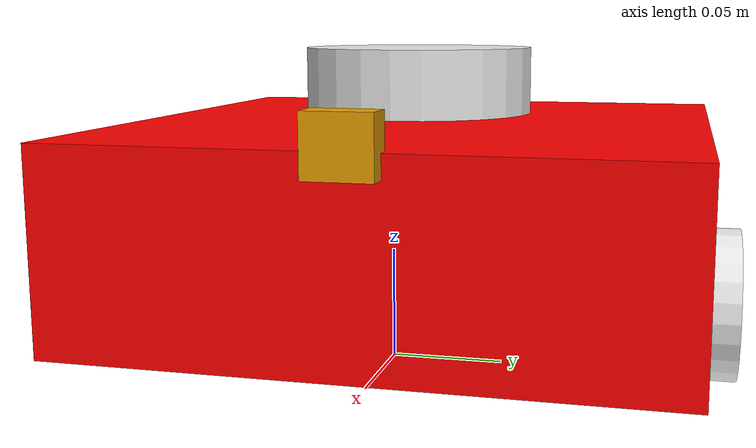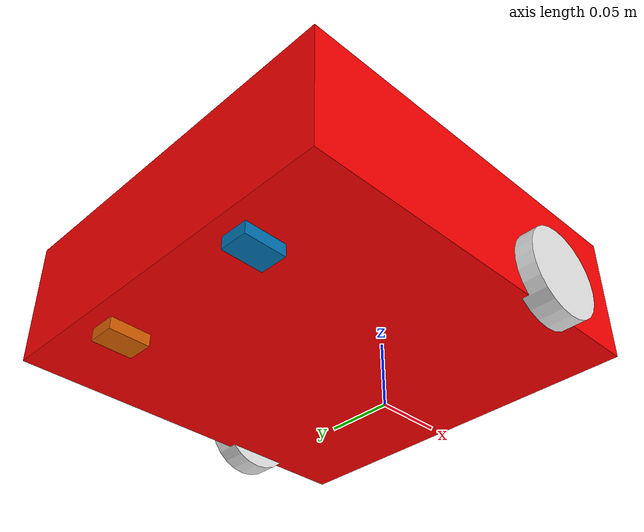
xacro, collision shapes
<?xml version="1.0" ?>
<robot name="team_hunt_player" xmlns:xacro="http://ros.org/wiki/xacro">

  <!-- Arguments -->
  <!-- Arguments are used as: $(arg argument) -->
  <xacro:arg name="player_name" default="p_bmendes"/>
  <xacro:arg name="player_color" default="Red"/>          <!-- Color must exist in Gazebo/Colors and be defined in properties.xacro.-->

  <!-- Copy arguments to properties so that they are visible in the included xacros -->
  <!-- Properties are used as ${property} -->
  <xacro:property name="player_name" value="$(arg player_name)"/>
  <xacro:property name="player_color" value="$(arg player_color)"/>

  <!-- Includes -->
  <xacro:include filename="$(find p_bmendes_description)/urdf/properties.xacro"/>
  <xacro:include filename="$(find turtlebot3_description)/urdf/common_properties.xacro"/>
  <xacro:include filename="$(find p_bmendes_description)/urdf/p_bmendes.gazebo.xacro"/>

  <!-- Define links and joins -->
  <link name="base_footprint"/>

  <joint name="base_joint" type="fixed">
    <parent link="base_footprint"/>
    <child link="base_link" />
    <origin xyz="0 0 0.010" rpy="0 0 0"/>
  </joint>

  <link name="base_link">
    <visual>
      <origin xyz="-0.064 0 0.0" rpy="0 0 0"/>
      <geometry>
        <mesh filename="package://turtlebot3_description/meshes/bases/waffle_pi_base.stl" scale="0.001 0.001 0.001"/>
      </geometry>
      <material name="$(arg player_color)"/>
    </visual>

    <collision>
      <origin xyz="-0.064 0 0.047" rpy="0 0 0"/>
      <geometry>
        <box size="0.28 0.28 0.094"/>
      </geometry>
    </collision>

    <inertial>
      <origin xyz="0 0 0" rpy="0 0 0"/>
      <mass value="1.3729096e+00"/>
      <mass value="10"/>
      <inertia ixx="8.7002718e-03" ixy="-4.7576583e-05" ixz="1.1160499e-04"
               iyy="8.6195418e-03" iyz="-3.5422299e-06"
               izz="1.4612727e-02" />
    </inertial>
  </link>

  <joint name="wheel_left_joint" type="continuous">
    <parent link="base_link"/>
    <child link="wheel_left_link"/>
    <origin xyz="0.0 0.144 0.023" rpy="-1.57 0 0"/>
    <axis xyz="0 0 1"/>
  </joint>

  <link name="wheel_left_link">
    <visual>
      <origin xyz="0 0 0" rpy="1.57 0 0"/>
      <geometry>
        <mesh filename="package://turtlebot3_description/meshes/wheels/left_tire.stl" scale="0.001 0.001 0.001"/>
      </geometry>
      <material name="White"/>
    </visual>

    <collision>
      <origin xyz="0 0 0" rpy="0 0 0"/>
      <geometry>
        <cylinder length="0.018" radius="0.033"/>
      </geometry>
    </collision>

    <inertial>
      <origin xyz="0 0 0" />
      <mass value="2.8498940e-02" />
      <inertia ixx="1.1175580e-05" ixy="-4.2369783e-11" ixz="-5.9381719e-09"
               iyy="1.1192413e-05" iyz="-1.4400107e-11"
               izz="2.0712558e-05" />
      </inertial>
  </link>

  <joint name="wheel_right_joint" type="continuous">
    <parent link="base_link"/>
    <child link="wheel_right_link"/>
    <origin xyz="0.0 -0.144 0.023" rpy="-1.57 0 0"/>
    <axis xyz="0 0 1"/>
  </joint>

  <link name="wheel_right_link">
    <visual>
      <origin xyz="0 0 0" rpy="1.57 0 0"/>
      <geometry>
        <mesh filename="package://turtlebot3_description/meshes/wheels/right_tire.stl" scale="0.001 0.001 0.001"/>
      </geometry>
      <material name="White"/>
    </visual>

    <collision>
      <origin xyz="0 0 0" rpy="0 0 0"/>
      <geometry>
        <cylinder length="0.018" radius="0.033"/>
      </geometry>
    </collision>

    <inertial>
      <origin xyz="0 0 0" />
      <mass value="2.8498940e-02" />
      <inertia ixx="1.1175580e-05" ixy="-4.2369783e-11" ixz="-5.9381719e-09"
               iyy="1.1192413e-05" iyz="-1.4400107e-11"
               izz="2.0712558e-05" />
      </inertial>
  </link>

  <joint name="caster_back_right_joint" type="fixed">
    <parent link="base_link"/>
    <child link="caster_back_right_link"/>
    <origin xyz="-0.177 -0.064 -0.004" rpy="-1.57 0 0"/>
  </joint>

  <link name="caster_back_right_link">
    <collision>
      <origin xyz="0 0.001 0" rpy="0 0 0"/>
      <geometry>
        <box size="0.030 0.009 0.020"/>
      </geometry>
    </collision>

    <inertial>
      <origin xyz="0 0 0" />
      <mass value="0.005" />
      <inertia ixx="0.001" ixy="0.0" ixz="0.0"
               iyy="0.001" iyz="0.0"
               izz="0.001" />
    </inertial>
  </link>

  <joint name="caster_back_left_joint" type="fixed">
    <parent link="base_link"/>
    <child link="caster_back_left_link"/>
    <origin xyz="-0.177 0.064 -0.004" rpy="-1.57 0 0"/>
  </joint>

  <link name="caster_back_left_link">
    <collision>
      <origin xyz="0 0.001 0" rpy="0 0 0"/>
      <geometry>
        <box size="0.030 0.009 0.020"/>
      </geometry>
    </collision>

    <inertial>
      <origin xyz="0 0 0" />
      <mass value="0.005" />
      <inertia ixx="0.001" ixy="0.0" ixz="0.0"
               iyy="0.001" iyz="0.0"
               izz="0.001" />
    </inertial>
  </link>

  <joint name="imu_joint" type="fixed">
    <parent link="base_link"/>
    <child link="imu_link"/>
    <origin xyz="0.0 0 0.068" rpy="0 0 0"/>
  </joint>

  <link name="imu_link"/>

  <joint name="scan_joint" type="fixed">
    <parent link="base_link"/>
    <child link="base_scan"/>
    <origin xyz="-0.064 0 0.122" rpy="0 0 0"/>
  </joint>

  <link name="base_scan">
    <visual>
      <origin xyz="0 0 0.0" rpy="0 0 0"/>
      <geometry>
        <mesh filename="package://turtlebot3_description/meshes/sensors/lds.stl" scale="0.001 0.001 0.001"/>
      </geometry>
      <material name="White"/>
    </visual>

    <collision>
      <origin xyz="0.015 0 -0.0065" rpy="0 0 0"/>
      <geometry>
        <cylinder length="0.0315" radius="0.055"/>
      </geometry>
    </collision>

    <inertial>
      <mass value="0.114" />
      <origin xyz="0 0 0" />
      <inertia ixx="0.001" ixy="0.0" ixz="0.0"
               iyy="0.001" iyz="0.0"
               izz="0.001" />
    </inertial>
  </link>

<!-- Front Camera -->
  <joint name="camera_joint" type="fixed">
    <origin xyz="0.073 -0.011 0.084" rpy="0 0 0"/>
    <parent link="base_link"/>
    <child link="camera_link"/>
  </joint>

  <link name="camera_link">
    <collision>
      <origin xyz="0.005 0.011 0.013" rpy="0 0 0"/>
      <geometry>
        <box size="0.015 0.030 0.027"/>
      </geometry>
    </collision>
  </link>

  <joint name="camera_rgb_joint" type="fixed">
    <origin xyz="0.003 0.011 0.009" rpy="0 0 0"/>
    <parent link="camera_link"/>
    <child link="camera_rgb_frame"/>
  </joint>
  <link name="camera_rgb_frame"/>

  <joint name="camera_rgb_optical_joint" type="fixed">
    <origin xyz="0 0 0" rpy="-1.57 0 -1.57"/>
    <parent link="camera_rgb_frame"/>
    <child link="camera_rgb_optical_frame"/>
  </joint>
  <link name="camera_rgb_optical_frame"/>

<!--&lt;!&ndash; Back Camera &ndash;&gt;-->

<!-- Back Camera -->
  <joint name="back_camera_joint" type="fixed">
    <origin xyz="-0.17 -0.011 0.084" rpy="0 0 -3.14"/>
    <parent link="base_link"/>
    <child link="back_camera_link"/>
  </joint>

  <link name="back_camera_link">
    <collision>
      <origin xyz="0.005 0.011 0.013" rpy="0 0 0"/>
      <geometry>
        <box size="0.015 0.030 0.027"/>
      </geometry>
    </collision>

    <visual>
      <origin xyz="0 0 0" rpy="0 0 0"/>
      <geometry>
        <box size="0.015 0.030 0.027"/>
      </geometry>
      <material name="blue"/>
    </visual>

  </link>

  <joint name="back_camera_rgb_joint" type="fixed">
    <origin xyz="0.003 0.011 0.009" rpy="0 0 0"/>
    <parent link="back_camera_link"/>
    <child link="back_camera_rgb_frame"/>
  </joint>
  <link name="back_camera_rgb_frame"/>

  <joint name="back_camera_rgb_optical_joint" type="fixed">
    <origin xyz="0 0 0" rpy="-1.57 0 -1.57"/>
    <parent link="back_camera_rgb_frame"/>
    <child link="back_camera_rgb_optical_frame"/>
  </joint>
  <link name="back_camera_rgb_optical_frame"/>

<!--               iyy="1.1192413e-05" iyz="-1.4400107e-11"-->

</robot>

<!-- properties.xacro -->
<robot name="xacro_properties" xmlns:xacro="http://ros.org/wiki/xacro">

  <!-- Init colour -->
  <material name="black">
      <color rgba="0.0 0.0 0.0 1.0"/>
  </material>

  <material name="dark">
    <color rgba="0.3 0.3 0.3 1.0"/>
  </material>
  <material name="light_black">
    <color rgba="0.4 0.4 0.4 1.0"/>
  </material>

  <material name="blue">
    <color rgba="0.0 0.0 0.8 1.0"/>
  </material>

  <material name="green">
    <color rgba="0.0 0.8 0.0 1.0"/>
  </material>

  <material name="grey">
    <color rgba="0.5 0.5 0.5 1.0"/>
  </material>

  <material name="orange">
    <color rgba="${255/255} ${108/255} ${10/255} 1.0"/>
  </material>

  <material name="brown">
    <color rgba="${222/255} ${207/255} ${195/255} 1.0"/>
  </material>

  <material name="red">
    <color rgba="0.8 0.0 0.0 1.0"/>
  </material>

  <material name="white">
    <color rgba="1.0 1.0 1.0 1.0"/>
  </material>

<!--  Team Hunt player colors-->
  <material name="Red">
    <color rgba="1.0 0 0 1.0"/>
  </material>

  <material name="Green">
    <color rgba="0 1.0 0 1.0"/>
  </material>

  <material name="Blue">
    <color rgba="0 0 1.0 1.0"/>
  </material>

</robot>
